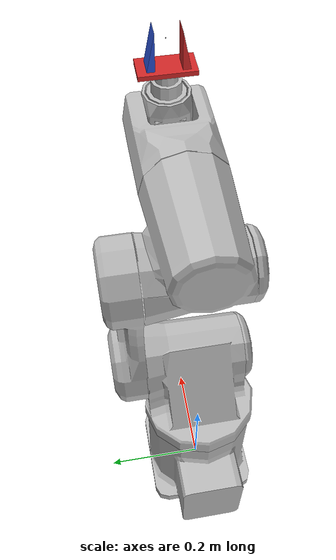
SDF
<?xml version="1.0" encoding="UTF-8"?>
<sdf version="1.4">
   <model name="ar6aixs">
      <link name="base">
         <pose>0.000000 0.000000 0.125 0.000000 0.000000 0.000000</pose>
         <inertial>
            <mass>2000</mass>
            <inertia>
               <ixx>0.1</ixx>
               <ixy>0.0</ixy>
               <iyy>0.1</iyy>
               <ixz>0.0</ixz>
               <iyz>0.0</iyz>
               <izz>0.1</izz>
            </inertia>
         </inertial>
         <collision name="Base">
            <geometry>
               <mesh>
                  <uri>/home/kevin/research/gazebo/Arm_Control3_ar6axis/model/ar6aixs/mesh/base.dae</uri>
               </mesh>
            </geometry>
            <surface>
               <friction>
                  <ode>
                     <mu>100</mu>
                     <mu2>50</mu2>
                  </ode>
               </friction>
            </surface>
         </collision>
         <visual name="Base">
            <geometry>
               <mesh>
                  <uri>/home/kevin/research/gazebo/Arm_Control3_ar6axis/model/ar6aixs/mesh/base.dae</uri>
               </mesh>
            </geometry>
         </visual>
      </link>
      <link name="link1">
         <pose>0.000000 0.000000 0.25 0.000000 0.000000 0.000000</pose>
         <inertial>
            <mass>0.1</mass>
            <inertia>
               <ixx>0.1</ixx>
               <ixy>0.0</ixy>
               <iyy>0.1</iyy>
               <ixz>0.0</ixz>
               <iyz>0.0</iyz>
               <izz>0.1</izz>
            </inertia>
         </inertial>
         <collision name="link1">
            <geometry>
               <mesh>
                  <uri>/home/kevin/research/gazebo/Arm_Control3_ar6axis/model/ar6aixs/mesh/link1.dae</uri>
               </mesh>
            </geometry>
            <surface>
               <friction>
                  <ode>
                     <mu>100</mu>
                     <mu2>50</mu2>
                  </ode>
               </friction>
            </surface>
         </collision>
         <visual name="link1">
            <geometry>
               <mesh>
                  <uri>/home/kevin/research/gazebo/Arm_Control3_ar6axis/model/ar6aixs/mesh/link1.dae</uri>
               </mesh>
            </geometry>
         </visual>
      </link>
      <link name="link2">
         <pose>0.075000 0.000 0.345 0.000000 0.000000 0.000000</pose>
         <inertial>
            <mass>0.1</mass>
            <inertia>
               <ixx>0.1</ixx>
               <ixy>0.0</ixy>
               <iyy>0.1</iyy>
               <ixz>0.0</ixz>
               <iyz>0.0</iyz>
               <izz>0.1</izz>
            </inertia>
         </inertial>
         <collision name="link2">
            <geometry>
               <mesh>
                  <uri>/home/kevin/research/gazebo/Arm_Control3_ar6axis/model/ar6aixs/mesh/link2.dae</uri>
               </mesh>
            </geometry>
            <surface>
               <friction>
                  <ode>
                     <mu>100</mu>
                     <mu2>50</mu2>
                  </ode>
               </friction>
            </surface>
         </collision>
         <visual name="link2">
            <geometry>
               <mesh>
                  <uri>/home/kevin/research/gazebo/Arm_Control3_ar6axis/model/ar6aixs/mesh/link2.dae</uri>
               </mesh>
            </geometry>
         </visual>
      </link>
      <link name="link3">
         <pose>0.075000 0.000 0.615 0.000000 0.000000 0.000000</pose>
         <inertial>
            <mass>0.1</mass>
            <inertia>
               <ixx>0.1</ixx>
               <ixy>0.0</ixy>
               <iyy>0.1</iyy>
               <ixz>0.0</ixz>
               <iyz>0.0</iyz>
               <izz>0.1</izz>
            </inertia>
         </inertial>
         <collision name="link3">
            <geometry>
               <mesh>
                  <uri>/home/kevin/research/gazebo/Arm_Control3_ar6axis/model/ar6aixs/mesh/link3.dae</uri>
               </mesh>
            </geometry>
            <surface>
               <friction>
                  <ode>
                     <mu>100</mu>
                     <mu2>50</mu2>
                  </ode>
               </friction>
            </surface>
         </collision>
         <visual name="link3">
            <geometry>
               <mesh>
                  <uri>/home/kevin/research/gazebo/Arm_Control3_ar6axis/model/ar6aixs/mesh/link3.dae</uri>
               </mesh>
            </geometry>
         </visual>
      </link>
      <link name="link4">
         <pose>0.1810 0.000 0.705 0.000000 0.000000 0.000000</pose>
         <inertial>
            <mass>0.1</mass>
            <inertia>
               <ixx>0.1</ixx>
               <ixy>0.0</ixy>
               <iyy>0.1</iyy>
               <ixz>0.0</ixz>
               <iyz>0.0</iyz>
               <izz>0.1</izz>
            </inertia>
         </inertial>
         <collision name="link4">
            <geometry>
               <mesh>
                  <uri>/home/kevin/research/gazebo/Arm_Control3_ar6axis/model/ar6aixs/mesh/link4.dae</uri>
               </mesh>
            </geometry>
            <surface>
               <friction>
                  <ode>
                     <mu>100</mu>
                     <mu2>50</mu2>
                  </ode>
               </friction>
            </surface>
         </collision>
         <visual name="link4">
            <geometry>
               <mesh>
                  <uri>/home/kevin/research/gazebo/Arm_Control3_ar6axis/model/ar6aixs/mesh/link4.dae</uri>
               </mesh>
            </geometry>
         </visual>
      </link>
      <link name="link5">
         <pose>0.3750 0.000 0.705 0.000000 0.000000 0.000000</pose>
         <inertial>
            <mass>0.1</mass>
            <inertia>
               <ixx>0.1</ixx>
               <ixy>0.0</ixy>
               <iyy>0.1</iyy>
               <ixz>0.0</ixz>
               <iyz>0.0</iyz>
               <izz>0.1</izz>
            </inertia>
         </inertial>
         <collision name="link5">
            <geometry>
               <mesh>
                  <uri>/home/kevin/research/gazebo/Arm_Control3_ar6axis/model/ar6aixs/mesh/link5.dae</uri>
               </mesh>
            </geometry>
            <surface>
               <friction>
                  <ode>
                     <mu>100</mu>
                     <mu2>50</mu2>
                  </ode>
               </friction>
            </surface>
         </collision>
         <visual name="link5">
            <geometry>
               <mesh>
                  <uri>/home/kevin/research/gazebo/Arm_Control3_ar6axis/model/ar6aixs/mesh/link5.dae</uri>
               </mesh>
            </geometry>
         </visual>
      </link>
      <link name="link6">
         <pose>0.3750 0.000 0.705 0.000000 0.000000 0.000000</pose>
         <inertial>
            <mass>0.1</mass>
            <inertia>
               <ixx>0.1</ixx>
               <ixy>0.0</ixy>
               <iyy>0.1</iyy>
               <ixz>0.0</ixz>
               <iyz>0.0</iyz>
               <izz>0.1</izz>
            </inertia>
         </inertial>
         <collision name="link6">
            <geometry>
               <mesh>
                  <uri>/home/kevin/research/gazebo/Arm_Control3_ar6axis/model/ar6aixs/mesh/link6.dae</uri>
               </mesh>
            </geometry>
            <surface>
               <friction>
                  <ode>
                     <mu>100</mu>
                     <mu2>50</mu2>
                  </ode>
               </friction>
            </surface>
         </collision>
         <visual name="link6">
            <geometry>
               <mesh>
                  <uri>/home/kevin/research/gazebo/Arm_Control3_ar6axis/model/ar6aixs/mesh/link6.dae</uri>
               </mesh>
            </geometry>
         </visual>
      </link>
      <joint name="joint1" type="revolute">
         <pose>0.000000 0.000000 0.0 0.000000 0.000000 0.000000</pose>
         <child>link1</child>
         <parent>base</parent>
         <axis>
            <xyz>0 0 1</xyz>
            <limit>
               <lower>-2.967</lower>
               <upper>2.967</upper>
            </limit>
         </axis>
      </joint>
      <joint name="joint2" type="revolute">
         <pose>0.000000 0.000000 0.0 0.000000 0.000000 0.000000</pose>
         <child>link2</child>
         <parent>link1</parent>
         <axis>
            <xyz>0 1 0</xyz>
            <limit>
               <lower>-1.4835</lower>
               <upper>2.2689</upper>
            </limit>
         </axis>
      </joint>
      <joint name="joint3" type="revolute">
         <pose>0.000000 0.000000 0.0 0.000000 0.000000 0.000000</pose>
         <child>link3</child>
         <parent>link2</parent>
         <axis>
            <xyz>0 1 0</xyz>
            <limit>
               <lower>-1.919</lower>
               <upper>2.967</upper>
            </limit>
         </axis>
      </joint>
      <joint name="joint4" type="revolute">
         <pose>0.000000 0.000000 0.0 0.000000 0.000000 0.000000</pose>
         <child>link4</child>
         <parent>link3</parent>
         <axis>
            <xyz>1 0 0</xyz>
            <limit>
               <lower>-3.316</lower>
               <upper>3.316</upper>
            </limit>
         </axis>
      </joint>
      <joint name="joint5" type="revolute">
         <pose>0.000000 0.000000 0.0 0.000000 0.000000 0.000000</pose>
         <child>link5</child>
         <parent>link4</parent>
         <axis>
            <xyz>0 1 0</xyz>
            <limit>
               <lower>-2.1816</lower>
               <upper>2.1816</upper>
            </limit>
         </axis>
      </joint>
      <joint name="joint6" type="revolute">
         <pose>0.000000 0.000000 0.0 0.000000 0.000000 0.000000</pose>
         <child>link6</child>
         <parent>link5</parent>
         <axis>
            <xyz> 0 0 1 </xyz>
            <limit>
               <lower>-6.28</lower>
               <upper>6.28</upper>
            </limit>
         </axis>
      </joint>

	<include>

		<pose>0.375000 0.000000 0.8760  3.1415926 0 0.000000</pose>
			<uri>/home/kevin/research/gazebo/Arm_Control3_ar6axis/model/gripper</uri>
		</include>

 <!--joint_6_gripper -->
     <joint name="joint7" type="revolute">
      <pose>0.000000 0.000000 0.004386 0.000000 0.000000 0.000000</pose>
      <child>gripper::plam</child>
      <parent>link6</parent>
      <axis>
         <xyz>0 0 1</xyz>
         <limit>
          <lower>0</lower>
          <upper>0</upper>
         </limit>
      </axis>
   </joint>

 <plugin name="ccc" filename="/home/kevin/research/gazebo/Arm_Control3_ar6axis/Debug/libArm_Control3_ar6axis.so" />
   </model>
</sdf>

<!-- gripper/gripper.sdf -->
<sdf version="1.4">
   <model name="gripper">
      <link name="plam">
         <pose>0.000000 0.000000 0.074561 0.000000 0.000000 0.000000</pose>
         <inertial>
            <mass>5.8</mass>
            <inertia>
               <ixx>0.05</ixx>
               <ixy>0.0</ixy>
               <iyy>0.05</iyy>
               <ixz>0.0</ixz>
               <iyz>0.0</iyz>
               <izz>0.05</izz>
            </inertia>
         </inertial>
         <collision name="collision">
            <surface>
               <friction>
                  <ode>
                     <mu>100000.0</mu>
                     <mu2>100000.0</mu2>
                     <slip1>0.0</slip1>
                     <slip2>0.0</slip2>
                  </ode>
               </friction>
            </surface>
            <geometry>
               <box>
                  <size>0.052632 0.105263 0.008772</size>
               </box>
            </geometry>
         </collision>
         <visual name="visual">
            <geometry>
               <box>
                  <size>0.052632 0.105263 0.008772</size>
               </box>
            </geometry>
            <material>
               <script>
                  <uri>file://media/materials/scripts/gazebo.material</uri>
                  <name>Gazebo/Red</name>
               </script>
            </material>
         </visual>
      </link>
      <link name="right_finger">
         <pose>0.000000 0.029825 0.035088 0.000000 0.000000 0.000000</pose>
         <inertial>
            <mass>.1</mass>
            <inertia>
               <ixx>0.05</ixx>
               <ixy>0.0</ixy>
               <iyy>0.05</iyy>
               <ixz>0.0</ixz>
               <iyz>0.0</iyz>
               <izz>0.05</izz>
            </inertia>
         </inertial>
         <collision name="collision">
            <surface>
               <bounce>
                  <restitution_coefficient>0</restitution_coefficient>
                  <threshold>99999999</threshold>
               </bounce>
               <friction>
                  <ode>
                     <mu>100000.0</mu>
                     <mu2>100000.0</mu2>
                     <slip1>0.0</slip1>
                     <slip2>0.0</slip2>
                  </ode>
               </friction>
            </surface>
            <geometry>
               <mesh>
                  <scale>0.045614 0.035088 0.035088</scale>
                  <uri>/home/kevin/research/gazebo/Arm_Control2/model/gripper/right_finger.dae</uri>
               </mesh>
            </geometry>
         </collision>
         <visual name="visual">
            <material>
               <script>
                  <uri>file://media/materials/scripts/gazebo.material</uri>
                  <name>Gazebo/Red</name>
               </script>
            </material>
            <geometry>
               <mesh>
                  <scale>0.045614 0.035088 0.035088</scale>
                  <uri>/home/kevin/research/gazebo/Arm_Control2/model/gripper/right_finger.dae</uri>
               </mesh>
            </geometry>
         </visual>
      </link>
      <link name="left_finger">
         <pose>0.000000 -0.025439 0.035088 0.000000 0.000000 0.000000</pose>
         <inertial>
            <mass>.1</mass>
            <inertia>
               <ixx>0.05</ixx>
               <ixy>0.0</ixy>
               <iyy>0.05</iyy>
               <ixz>0.0</ixz>
               <iyz>0.0</iyz>
               <izz>0.05</izz>
            </inertia>
         </inertial>
         <collision name="collision">
            <surface>
               <bounce>
                  <restitution_coefficient>0</restitution_coefficient>
                  <threshold>99999999</threshold>
               </bounce>
               <friction>
                  <ode>
                     <mu>100000.0</mu>
                     <mu2>100000.0</mu2>
                     <slip1>0.0</slip1>
                     <slip2>0.0</slip2>
                  </ode>
               </friction>
            </surface>
            <geometry>
               <mesh>
                  <scale>0.045614 0.035088 0.035088</scale>
                  <uri>/home/kevin/research/gazebo/Arm_Control2/model/gripper/left_finger.dae</uri>
               </mesh>
            </geometry>
         </collision>
         <visual name="visual">
            <material>
               <script>
                  <uri>file://media/materials/scripts/gazebo.material</uri>
                  <name>Gazebo/Blue</name>
               </script>
            </material>
            <geometry>
               <mesh>
                  <scale>0.045614 0.035088 0.035088</scale>
                  <uri>/home/kevin/research/gazebo/Arm_Control2/model/gripper/left_finger.dae</uri>
               </mesh>
            </geometry>
         </visual>
      </link>
      <joint name="right_joint" type="prismatic">
         <pose>0.000000 0.000000 0.035088 0.000000 0.000000 0.000000</pose>
         <child>right_finger</child>
         <parent>plam</parent>
         <axis>
            <dynamics>
               <damping>5</damping>
               <friction>5</friction>
            </dynamics>
            <xyz>0 1 0</xyz>
            <dynamics>
               <damping>5</damping>
               <friction>5</friction>
            </dynamics>
            <limit>
               <lower>-0.0228</lower>
               <upper>0</upper>
            </limit>
         </axis>
      </joint>
      <joint name="left_joint" type="prismatic">
         <pose>0.000000 0.000000 0.035088 0.000000 0.000000 0.000000</pose>
         <child>left_finger</child>
         <parent>plam</parent>
         <axis>
            <dynamics>
               <damping>5</damping>
               <friction>5</friction>
            </dynamics>
            <xyz>0 1 0</xyz>
            <limit>
               <lower>-0.0085</lower>
               <upper>0.0208</upper>
            </limit>
         </axis>
      </joint>

      <joint name="glue" type="revolute">
			<axis>1 0 0</axis>
         <pose>0.000000 0.000000 0.0 0.000000 0.000000 0.000000</pose>
         <child>dummy_for_glue</child>
         <parent>plam</parent>
      </joint>

		<link name="dummy_for_glue">
         <pose>0.000000 0.0 0.02 0.000000 0.000000 0.000000</pose>
 			<inertial>
            <mass>.0001</mass>
         </inertial>
         <collision name="collision">
            <geometry>
               <sphere>
                  <radius>0.0001</radius>
               </sphere>
            </geometry>
         </collision>

         <visual name="visual">
            <geometry>
               <sphere>
                  <radius>0.001</radius>
               </sphere>
            </geometry>
         </visual>
      </link>

   </model>
</sdf>
